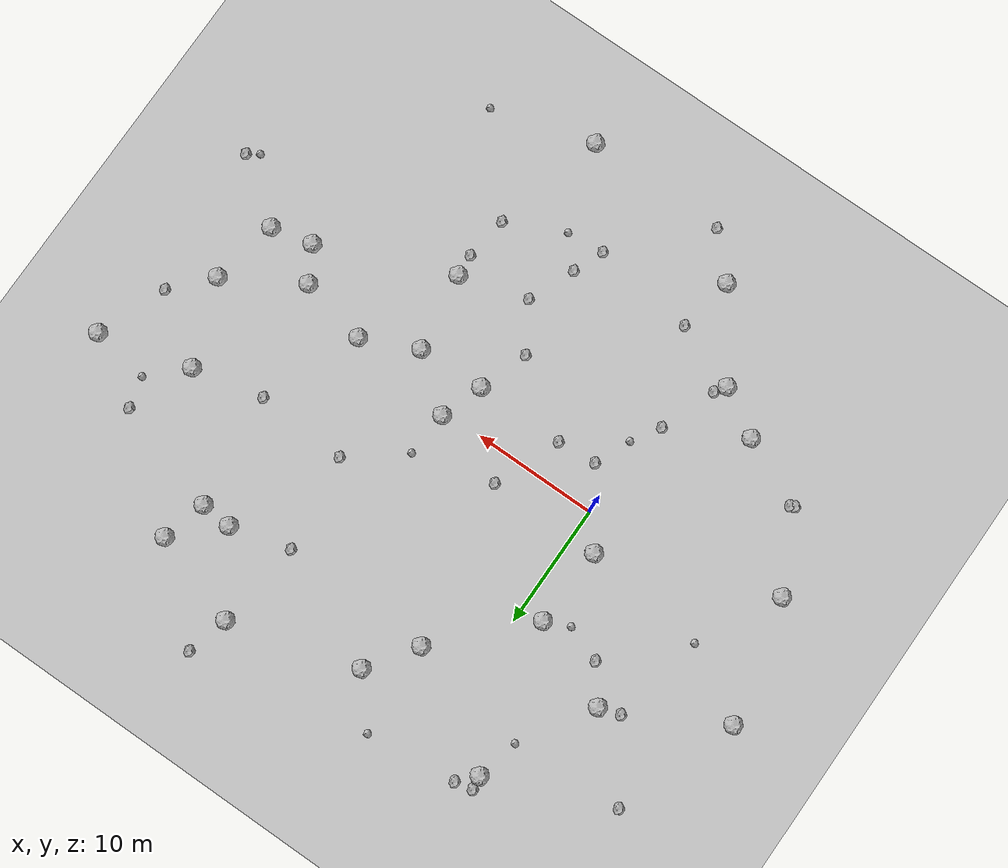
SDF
<sdf version="1.6">
 <world name="default">
  <include><uri>model://custom_ground</uri></include>
  <include><uri>model://sun</uri></include>
  <model name="rock1_0_0">
   <include><uri>model://rock1</uri><pose>-8.676936144939155 11.637561756383867 0.5 0 0 0</pose></include>
  </model>
  <model name="rock1_0_1">
   <include><uri>model://rock1</uri><pose>-15.28422738402249 -2.9046601681512065 0.5 0 0 0</pose></include>
  </model>
  <model name="rock1_0_2">
   <include><uri>model://rock1</uri><pose>27.322768168559385 -2.045357332474559 0.5 0 0 0</pose></include>
  </model>
  <model name="rock1_0_3">
   <include><uri>model://rock1</uri><pose>23.931106764600052 16.164782574607152 0.5 0 0 0</pose></include>
  </model>
  <model name="rock1_0_4">
   <include><uri>model://rock1</uri><pose>17.556154061956462 22.20786044129612 0.5 0 0 0</pose></include>
  </model>
  <model name="rock1_0_5">
   <include><uri>model://rock1</uri><pose>38.154287775445425 10.14473013201512 0.5 0 0 0</pose></include>
  </model>
  <model name="rock1_0_6">
   <include><uri>model://rock1</uri><pose>-2.013876946543057 2.41611257572292 0.5 0 0 0</pose></include>
  </model>
  <model name="rock1_0_7">
   <include><uri>model://rock1</uri><pose>24.890997009322405 19.78023522267126 0.5 0 0 0</pose></include>
  </model>
  <model name="rock1_0_8">
   <include><uri>model://rock1</uri><pose>15.689689300359866 -23.60257508790437 0.5 0 0 0</pose></include>
  </model>
  <model name="rock1_0_9">
   <include><uri>model://rock1</uri><pose>7.2300225445005 19.31966409042127 0.5 0 0 0</pose></include>
  </model>
  <model name="rock1_0_10">
   <include><uri>model://rock1</uri><pose>-17.574604127709545 6.980109151737516 0.5 0 0 0</pose></include>
  </model>
  <model name="rock1_0_11">
   <include><uri>model://rock1</uri><pose>-6.777212397260371 -11.486596440793715 0.5 0 0 0</pose></include>
  </model>
  <model name="rock1_0_12">
   <include><uri>model://rock1</uri><pose>18.397679699028146 -9.12080662400885 0.5 0 0 0</pose></include>
  </model>
  <model name="rock1_0_13">
   <include><uri>model://rock1</uri><pose>21.82787056441844 -0.8288929410029091 0.5 0 0 0</pose></include>
  </model>
  <model name="rock1_0_14">
   <include><uri>model://rock1</uri><pose>30.750438812479423 8.242658971590274 0.5 0 0 0</pose></include>
  </model>
  <model name="rock1_0_15">
   <include><uri>model://rock1</uri><pose>12.04944592820138 -3.0318350315081055 0.5 0 0 0</pose></include>
  </model>
  <model name="rock1_0_16">
   <include><uri>model://rock1</uri><pose>28.879891695396616 -4.7445199655218495 0.5 0 0 0</pose></include>
  </model>
  <model name="rock1_0_17">
   <include><uri>model://rock1</uri><pose>33.27140651732042 1.473240355407789 0.5 0 0 0</pose></include>
  </model>
  <model name="rock1_0_18">
   <include><uri>model://rock1</uri><pose>17.41441878687631 -2.828405211155683 0.5 0 0 0</pose></include>
  </model>
  <model name="rock1_0_19">
   <include><uri>model://rock1</uri><pose>13.22558033182095 0.39512265984664907 0.5 0 0 0</pose></include>
  </model>
  <model name="rock1_0_20">
   <include><uri>model://rock1</uri><pose>4.564959939175786 15.438372600612162 0.5 0 0 0</pose></include>
  </model>
  <model name="rock1_0_21">
   <include><uri>model://rock1</uri><pose>32.19879865189429 -3.988773469174994 0.5 0 0 0</pose></include>
  </model>
  <model name="rock1_0_22">
   <include><uri>model://rock1</uri><pose>-4.391060433548812 20.743504401378523 0.5 0 0 0</pose></include>
  </model>
  <model name="rock1_0_23">
   <include><uri>model://rock1</uri><pose>-1.751934844882669 8.738729242564737 0.5 0 0 0</pose></include>
  </model>
  <model name="rock1_0_24">
   <include><uri>model://rock1</uri><pose>21.462683595973168 16.359565467044078 0.5 0 0 0</pose></include>
  </model>
  <model name="rock1_0_25">
   <include><uri>model://rock1</uri><pose>1.3494657716392027 -20.290917669143766 0.5 0 0 0</pose></include>
  </model>
  <model name="rock1_0_26">
   <include><uri>model://rock1</uri><pose>-3.118646624675886 -13.705412968494915 0.5 0 0 0</pose></include>
  </model>
  <model name="rock2_0_0">
   <include><uri>model://rock2</uri><pose>10.423141822270974 -16.938080857139816 0.3 0 0 0</pose></include>
  </model>
  <model name="rock2_0_1">
   <include><uri>model://rock2</uri><pose>35.99941994874565 4.529702362339535 0.3 0 0 0</pose></include>
  </model>
  <model name="rock2_0_2">
   <include><uri>model://rock2</uri><pose>-6.6349914352770085 8.923670206987055 0.3 0 0 0</pose></include>
  </model>
  <model name="rock2_0_3">
   <include><uri>model://rock2</uri><pose>18.530670161620797 -10.942781103791795 0.3 0 0 0</pose></include>
  </model>
  <model name="rock2_0_4">
   <include><uri>model://rock2</uri><pose>-0.8427114689259767 -8.348731838644913 0.3 0 0 0</pose></include>
  </model>
  <model name="rock2_0_5">
   <include><uri>model://rock2</uri><pose>11.411596651563109 -14.473126079764514 0.3 0 0 0</pose></include>
  </model>
  <model name="rock2_0_6">
   <include><uri>model://rock2</uri><pose>25.04033625441081 6.989508967373297 0.3 0 0 0</pose></include>
  </model>
  <model name="rock2_0_7">
   <include><uri>model://rock2</uri><pose>7.031225363398011 2.335448277645213 0.3 0 0 0</pose></include>
  </model>
  <model name="rock2_0_8">
   <include><uri>model://rock2</uri><pose>-10.400087375142213 11.112840879860691 0.3 0 0 0</pose></include>
  </model>
  <model name="rock2_0_9">
   <include><uri>model://rock2</uri><pose>18.067934291943374 -14.486671957280095 0.3 0 0 0</pose></include>
  </model>
  <model name="rock2_0_10">
   <include><uri>model://rock2</uri><pose>-4.564079082418335 21.828062972949155 0.3 0 0 0</pose></include>
  </model>
  <model name="rock2_0_11">
   <include><uri>model://rock2</uri><pose>12.958598135572423 -10.710458238323586 0.3 0 0 0</pose></include>
  </model>
  <model name="rock2_0_12">
   <include><uri>model://rock2</uri><pose>-12.362390863451227 -9.098261460144037 0.3 0 0 0</pose></include>
  </model>
  <model name="rock2_0_13">
   <include><uri>model://rock2</uri><pose>18.412988835705825 25.58518909016854 0.3 0 0 0</pose></include>
  </model>
  <model name="rock2_0_14">
   <include><uri>model://rock2</uri><pose>32.83649345109225 13.431470555639955 0.3 0 0 0</pose></include>
  </model>
  <model name="rock2_0_15">
   <include><uri>model://rock2</uri><pose>10.697280596123711 -7.018561978166463 0.3 0 0 0</pose></include>
  </model>
  <model name="rock2_0_16">
   <include><uri>model://rock2</uri><pose>17.69873724604581 7.402560558983545 0.3 0 0 0</pose></include>
  </model>
  <model name="rock2_0_17">
   <include><uri>model://rock2</uri><pose>-2.5159684518128778 -12.837808494638448 0.3 0 0 0</pose></include>
  </model>
  <model name="rock2_0_18">
   <include><uri>model://rock2</uri><pose>16.6497151214815 15.123423311956508 0.3 0 0 0</pose></include>
  </model>
  <model name="rock2_0_19">
   <include><uri>model://rock2</uri><pose>-3.1477226121086197 22.143886544028533 0.3 0 0 0</pose></include>
  </model>
  <model name="rock2_0_20">
   <include><uri>model://rock2</uri><pose>4.897015148297545 -3.002868440069065 0.3 0 0 0</pose></include>
  </model>
  <model name="rock2_0_21">
   <include><uri>model://rock2</uri><pose>2.1355803400802778 -15.789792983999911 0.3 0 0 0</pose></include>
  </model>
  <model name="rock2_0_22">
   <include><uri>model://rock2</uri><pose>1.7614777025808657 -3.2526362225460552 0.3 0 0 0</pose></include>
  </model>
  <model name="rock2_0_23">
   <include><uri>model://rock2</uri><pose>4.349186066687839 -23.478645311927927 0.3 0 0 0</pose></include>
  </model>
  <model name="rock2_0_24">
   <include><uri>model://rock2</uri><pose>-14.125001963955267 16.840398677737646 0.3 0 0 0</pose></include>
  </model>
  <model name="rock2_0_25">
   <include><uri>model://rock2</uri><pose>-12.013142549351542 -8.93745001875616 0.3 0 0 0</pose></include>
  </model>
  <model name="rock2_0_26">
   <include><uri>model://rock2</uri><pose>37.17678232634551 -7.605349061841427 0.3 0 0 0</pose></include>
  </model>
  <model name="rock3_0_0">
   <include><uri>model://rock3</uri><pose>29.040536876213224 -4.630172739215549 0.2 0 0 0</pose></include>
  </model>
  <model name="rock3_0_1">
   <include><uri>model://rock3</uri><pose>4.084220183377589 22.935586230048536 0.2 0 0 0</pose></include>
  </model>
  <model name="rock3_0_2">
   <include><uri>model://rock3</uri><pose>-3.7563662352310665 7.835498335785218 0.2 0 0 0</pose></include>
  </model>
  <model name="rock3_0_3">
   <include><uri>model://rock3</uri><pose>36.23673913939634 -8.25524273346893 0.2 0 0 0</pose></include>
  </model>
  <model name="rock3_0_4">
   <include><uri>model://rock3</uri><pose>0.503205360008085 -6.141510886738722 0.2 0 0 0</pose></include>
  </model>
  <model name="rock3_0_5">
   <include><uri>model://rock3</uri><pose>13.435247055888517 4.001625383265768 0.2 0 0 0</pose></include>
  </model>
  <model name="rock3_0_6">
   <include><uri>model://rock3</uri><pose>13.423100961156642 -16.72005200234382 0.2 0 0 0</pose></include>
  </model>
  <model name="rock3_0_7">
   <include><uri>model://rock3</uri><pose>33.45653787010419 10.913048848773315 0.2 0 0 0</pose></include>
  </model>
  <model name="rock3_0_8">
   <include><uri>model://rock3</uri><pose>-5.22926319539919 17.2921543027201 0.2 0 0 0</pose></include>
  </model>
  <model name="rock3_0_9">
   <include><uri>model://rock3</uri><pose>-11.94759735362226 3.6062942815620858 0.2 0 0 0</pose></include>
  </model>
  <model name="rock3_0_10">
   <include><uri>model://rock3</uri><pose>23.896107817654055 -21.36803229947739 0.2 0 0 0</pose></include>
  </model>
 </world>
</sdf>
